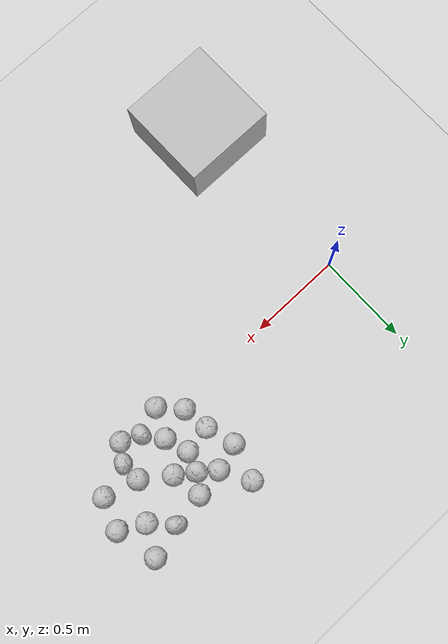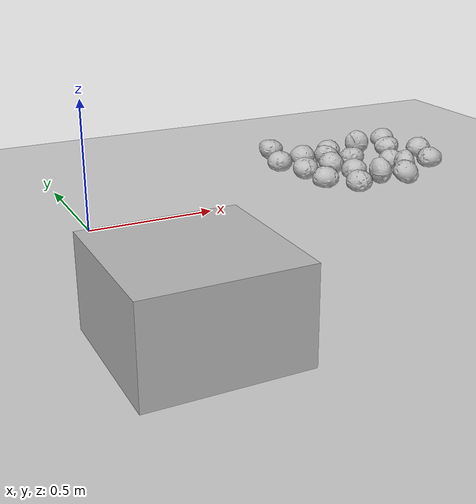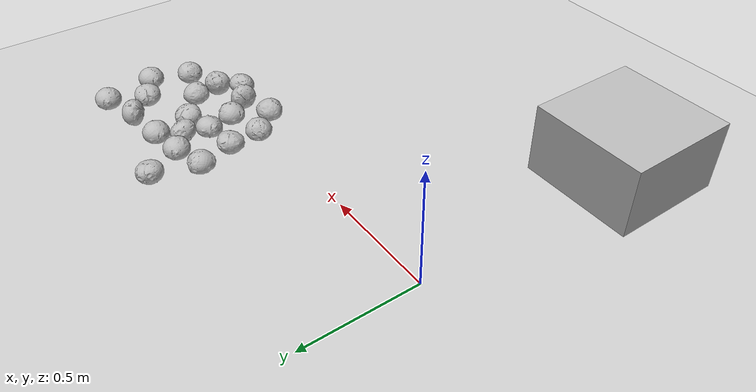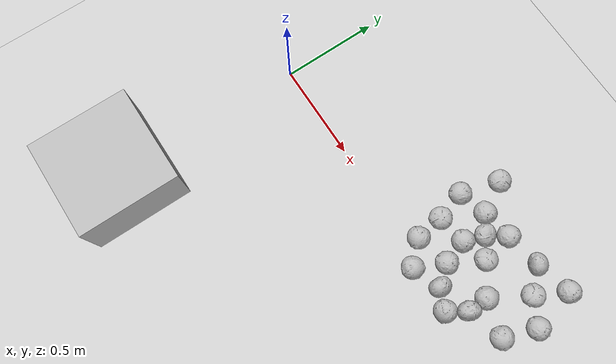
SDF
<sdf version="1.6">
 <world name="default">
  <model name="ground_plane">
   <static>1</static>
   <link name="link">
    <collision name="collision">
     <geometry><plane><normal>0 0 1</normal><size>100 100</size></plane></geometry>
     <surface>
      <contact><collide_bitmask>65535</collide_bitmask></contact>
      <friction><ode><mu>100</mu><mu2>50</mu2></ode></friction>
     </surface>
    </collision>
    <visual name="visual">
     <cast_shadows>0</cast_shadows>
     <geometry><plane><normal>0 0 1</normal><size>100 100</size></plane></geometry>
     <material>
      <script><uri>file://media/materials/scripts/gazebo.material</uri><name>Gazebo/Grey</name></script>
     </material>
    </visual>
   </link>
  </model>
  <light name="sun" type="directional">
   <pose>0 0 10 0 -0 0</pose>
   <diffuse>0.8 0.8 0.8 1</diffuse>
   <specular>0.2 0.2 0.2 1</specular>
   <attenuation>
    <range>1000</range>
    <constant>0.9</constant>
    <linear>0.01</linear>
    <quadratic>0.001</quadratic>
   </attenuation>
   <direction>-0.5 0.1 -0.9</direction>
  </light>
  <model name="mytable">
   <static>1</static>
   <link name="link">
    <inertial>
     <mass>100</mass>
     <inertia><ixx>0.083</ixx><ixy>0</ixy><ixz>0</ixz><iyy>0.083</iyy><iyz>0</iyz><izz>0.083</izz></inertia>
    </inertial>
    <collision name="collision"><geometry><box><size>0.5 0.5 0.4</size></box></geometry></collision>
    <visual name="visual"><geometry><box><size>0.5 0.5 0.4</size></box></geometry></visual>
   </link>
   <pose>0 -1 0.1 0 -0 0</pose>
  </model>
  <gravity>0 0 -9.8</gravity>
  <magnetic_field>6e-06 2.3e-05 -4.2e-05</magnetic_field>
  <atmosphere type="adiabatic"/>
  <physics name="default_physics" default="0" type="ode">
   <max_step_size>0.001</max_step_size>
   <real_time_factor>1</real_time_factor>
   <real_time_update_rate>1000</real_time_update_rate>
  </physics>
  <scene><ambient>0.4 0.4 0.4 1</ambient><background>0.7 0.7 0.7 1</background><shadows>1</shadows></scene>
  <audio><device>default</device></audio>
  <spherical_coordinates>
   <surface_model>EARTH_WGS84</surface_model>
   <latitude_deg>0</latitude_deg>
   <longitude_deg>0</longitude_deg>
   <elevation>0</elevation>
   <heading_deg>0</heading_deg>
  </spherical_coordinates>
  <model name="cabbage_1">
   <link name="link">
    <inertial>
     <mass>1</mass>
     <inertia><ixx>0.001</ixx><ixy>0</ixy><ixz>0</ixz><iyy>0.001</iyy><iyz>0</iyz><izz>0.001</izz></inertia>
    </inertial>
    <collision name="collision">
     <geometry>
      <mesh><scale>0.001 0.001 0.001</scale><uri>model://cabbage/cabbage_single.dae</uri></mesh>
     </geometry>
     <surface>
      <friction><ode><mu>0.8</mu><mu2>0.8</mu2></ode></friction>
      <contact><ode><max_vel>0.05</max_vel><min_depth>0.0001</min_depth></ode></contact>
     </surface>
    </collision>
    <visual name="visual">
     <geometry>
      <mesh><scale>0.001 0.001 0.001</scale><uri>model://cabbage/cabbage_single.dae</uri></mesh>
     </geometry>
     <material><script><uri>model://cabbage/texture.material</uri><name>CabbageTexture</name></script></material>
    </visual>
   </link>
   <pose>1.57456 0.326079 0.048839 -1.61251 -0.167894 0.044056</pose>
  </model>
  <model name="cabbage_2">
   <link name="link">
    <inertial>
     <mass>1</mass>
     <inertia><ixx>0.001</ixx><ixy>0</ixy><ixz>0</ixz><iyy>0.001</iyy><iyz>0</iyz><izz>0.001</izz></inertia>
    </inertial>
    <collision name="collision">
     <geometry>
      <mesh><scale>0.001 0.001 0.001</scale><uri>model://cabbage/cabbage_single.dae</uri></mesh>
     </geometry>
     <surface>
      <friction><ode><mu>0.8</mu><mu2>0.8</mu2></ode></friction>
      <contact><ode><max_vel>0.05</max_vel><min_depth>0.0001</min_depth></ode></contact>
     </surface>
    </collision>
    <visual name="visual">
     <geometry>
      <mesh><scale>0.001 0.001 0.001</scale><uri>model://cabbage/cabbage_single.dae</uri></mesh>
     </geometry>
     <material><script><uri>model://cabbage/texture.material</uri><name>CabbageTexture</name></script></material>
    </visual>
   </link>
   <pose>1.14043 0.381492 0.051428 1.57481 0.007128 -1.27559</pose>
  </model>
  <model name="cabbage_3">
   <link name="link">
    <inertial>
     <mass>1</mass>
     <inertia><ixx>0.001</ixx><ixy>0</ixy><ixz>0</ixz><iyy>0.001</iyy><iyz>0</iyz><izz>0.001</izz></inertia>
    </inertial>
    <collision name="collision">
     <geometry>
      <mesh><scale>0.001 0.001 0.001</scale><uri>model://cabbage/cabbage_single.dae</uri></mesh>
     </geometry>
     <surface>
      <friction><ode><mu>0.8</mu><mu2>0.8</mu2></ode></friction>
      <contact><ode><max_vel>0.05</max_vel><min_depth>0.0001</min_depth></ode></contact>
     </surface>
    </collision>
    <visual name="visual">
     <geometry>
      <mesh><scale>0.001 0.001 0.001</scale><uri>model://cabbage/cabbage_single.dae</uri></mesh>
     </geometry>
     <material><script><uri>model://cabbage/texture.material</uri><name>CabbageTexture</name></script></material>
    </visual>
   </link>
   <pose>1.30643 -0.011461 0.05901 0.126521 0.617138 -1.55404</pose>
  </model>
  <model name="cabbage_4">
   <link name="link">
    <inertial>
     <mass>1</mass>
     <inertia><ixx>0.001</ixx><ixy>0</ixy><ixz>0</ixz><iyy>0.001</iyy><iyz>0</iyz><izz>0.001</izz></inertia>
    </inertial>
    <collision name="collision">
     <geometry>
      <mesh><scale>0.001 0.001 0.001</scale><uri>model://cabbage/cabbage_single.dae</uri></mesh>
     </geometry>
     <surface>
      <friction><ode><mu>0.8</mu><mu2>0.8</mu2></ode></friction>
      <contact><ode><max_vel>0.05</max_vel><min_depth>0.0001</min_depth></ode></contact>
     </surface>
    </collision>
    <visual name="visual">
     <geometry>
      <mesh><scale>0.001 0.001 0.001</scale><uri>model://cabbage/cabbage_single.dae</uri></mesh>
     </geometry>
     <material><script><uri>model://cabbage/texture.material</uri><name>CabbageTexture</name></script></material>
    </visual>
   </link>
   <pose>1.16037 -0.065343 0.05151 1.57624 0.008898 -3.08152</pose>
  </model>
  <model name="cabbage_5">
   <link name="link">
    <inertial>
     <mass>1</mass>
     <inertia><ixx>0.001</ixx><ixy>0</ixy><ixz>0</ixz><iyy>0.001</iyy><iyz>0</iyz><izz>0.001</izz></inertia>
    </inertial>
    <collision name="collision">
     <geometry>
      <mesh><scale>0.001 0.001 0.001</scale><uri>model://cabbage/cabbage_single.dae</uri></mesh>
     </geometry>
     <surface>
      <friction><ode><mu>0.8</mu><mu2>0.8</mu2></ode></friction>
      <contact><ode><max_vel>0.05</max_vel><min_depth>0.0001</min_depth></ode></contact>
     </surface>
    </collision>
    <visual name="visual">
     <geometry>
      <mesh><scale>0.001 0.001 0.001</scale><uri>model://cabbage/cabbage_single.dae</uri></mesh>
     </geometry>
     <material><script><uri>model://cabbage/texture.material</uri><name>CabbageTexture</name></script></material>
    </visual>
   </link>
   <pose>1.70586 0.255801 0.051511 1.57607 0.008797 -0.718621</pose>
  </model>
  <model name="cabbage_6">
   <link name="link">
    <inertial>
     <mass>1</mass>
     <inertia><ixx>0.001</ixx><ixy>0</ixy><ixz>0</ixz><iyy>0.001</iyy><iyz>0</iyz><izz>0.001</izz></inertia>
    </inertial>
    <collision name="collision">
     <geometry>
      <mesh><scale>0.001 0.001 0.001</scale><uri>model://cabbage/cabbage_single.dae</uri></mesh>
     </geometry>
     <surface>
      <friction><ode><mu>0.8</mu><mu2>0.8</mu2></ode></friction>
      <contact><ode><max_vel>0.05</max_vel><min_depth>0.0001</min_depth></ode></contact>
     </surface>
    </collision>
    <visual name="visual">
     <geometry>
      <mesh><scale>0.001 0.001 0.001</scale><uri>model://cabbage/cabbage_single.dae</uri></mesh>
     </geometry>
     <material><script><uri>model://cabbage/texture.material</uri><name>CabbageTexture</name></script></material>
    </visual>
   </link>
   <pose>1.40569 -0.059711 0.056397 1.95411 -0.360514 1.27379</pose>
  </model>
  <model name="cabbage_7">
   <link name="link">
    <inertial>
     <mass>1</mass>
     <inertia><ixx>0.001</ixx><ixy>0</ixy><ixz>0</ixz><iyy>0.001</iyy><iyz>0</iyz><izz>0.001</izz></inertia>
    </inertial>
    <collision name="collision">
     <geometry>
      <mesh><scale>0.001 0.001 0.001</scale><uri>model://cabbage/cabbage_single.dae</uri></mesh>
     </geometry>
     <surface>
      <friction><ode><mu>0.8</mu><mu2>0.8</mu2></ode></friction>
      <contact><ode><max_vel>0.05</max_vel><min_depth>0.0001</min_depth></ode></contact>
     </surface>
    </collision>
    <visual name="visual">
     <geometry>
      <mesh><scale>0.001 0.001 0.001</scale><uri>model://cabbage/cabbage_single.dae</uri></mesh>
     </geometry>
     <material><script><uri>model://cabbage/texture.material</uri><name>CabbageTexture</name></script></material>
    </visual>
   </link>
   <pose>1.05926 0.043629 0.051509 1.57613 0.009034 1.37471</pose>
  </model>
  <model name="cabbage_8">
   <link name="link">
    <inertial>
     <mass>1</mass>
     <inertia><ixx>0.001</ixx><ixy>0</ixy><ixz>0</ixz><iyy>0.001</iyy><iyz>0</iyz><izz>0.001</izz></inertia>
    </inertial>
    <collision name="collision">
     <geometry>
      <mesh><scale>0.001 0.001 0.001</scale><uri>model://cabbage/cabbage_single.dae</uri></mesh>
     </geometry>
     <surface>
      <friction><ode><mu>0.8</mu><mu2>0.8</mu2></ode></friction>
      <contact><ode><max_vel>0.05</max_vel><min_depth>0.0001</min_depth></ode></contact>
     </surface>
    </collision>
    <visual name="visual">
     <geometry>
      <mesh><scale>0.001 0.001 0.001</scale><uri>model://cabbage/cabbage_single.dae</uri></mesh>
     </geometry>
     <material><script><uri>model://cabbage/texture.material</uri><name>CabbageTexture</name></script></material>
    </visual>
   </link>
   <pose>1.23105 0.085213 0.05151 1.57614 0.008968 -0.175282</pose>
  </model>
  <model name="cabbage_9">
   <link name="link">
    <inertial>
     <mass>1</mass>
     <inertia><ixx>0.001</ixx><ixy>0</ixy><ixz>0</ixz><iyy>0.001</iyy><iyz>0</iyz><izz>0.001</izz></inertia>
    </inertial>
    <collision name="collision">
     <geometry>
      <mesh><scale>0.001 0.001 0.001</scale><uri>model://cabbage/cabbage_single.dae</uri></mesh>
     </geometry>
     <surface>
      <friction><ode><mu>0.8</mu><mu2>0.8</mu2></ode></friction>
      <contact><ode><max_vel>0.05</max_vel><min_depth>0.0001</min_depth></ode></contact>
     </surface>
    </collision>
    <visual name="visual">
     <geometry>
      <mesh><scale>0.001 0.001 0.001</scale><uri>model://cabbage/cabbage_single.dae</uri></mesh>
     </geometry>
     <material><script><uri>model://cabbage/texture.material</uri><name>CabbageTexture</name></script></material>
    </visual>
   </link>
   <pose>1.29252 0.406235 0.051511 1.57615 0.008848 -0.692284</pose>
  </model>
  <model name="cabbage_10">
   <link name="link">
    <inertial>
     <mass>1</mass>
     <inertia><ixx>0.001</ixx><ixy>0</ixy><ixz>0</ixz><iyy>0.001</iyy><iyz>0</iyz><izz>0.001</izz></inertia>
    </inertial>
    <collision name="collision">
     <geometry>
      <mesh><scale>0.001 0.001 0.001</scale><uri>model://cabbage/cabbage_single.dae</uri></mesh>
     </geometry>
     <surface>
      <friction><ode><mu>0.8</mu><mu2>0.8</mu2></ode></friction>
      <contact><ode><max_vel>0.05</max_vel><min_depth>0.0001</min_depth></ode></contact>
     </surface>
    </collision>
    <visual name="visual">
     <geometry>
      <mesh><scale>0.001 0.001 0.001</scale><uri>model://cabbage/cabbage_single.dae</uri></mesh>
     </geometry>
     <material><script><uri>model://cabbage/texture.material</uri><name>CabbageTexture</name></script></material>
    </visual>
   </link>
   <pose>1.22421 0.312697 0.051442 -1.66779 -0.602282 -2.40746</pose>
  </model>
  <model name="cabbage_11">
   <link name="link">
    <inertial>
     <mass>1</mass>
     <inertia><ixx>0.001</ixx><ixy>0</ixy><ixz>0</ixz><iyy>0.001</iyy><iyz>0</iyz><izz>0.001</izz></inertia>
    </inertial>
    <collision name="collision">
     <geometry>
      <mesh><scale>0.001 0.001 0.001</scale><uri>model://cabbage/cabbage_single.dae</uri></mesh>
     </geometry>
     <surface>
      <friction><ode><mu>0.8</mu><mu2>0.8</mu2></ode></friction>
      <contact><ode><max_vel>0.05</max_vel><min_depth>0.0001</min_depth></ode></contact>
     </surface>
    </collision>
    <visual name="visual">
     <geometry>
      <mesh><scale>0.001 0.001 0.001</scale><uri>model://cabbage/cabbage_single.dae</uri></mesh>
     </geometry>
     <material><script><uri>model://cabbage/texture.material</uri><name>CabbageTexture</name></script></material>
    </visual>
   </link>
   <pose>1.46482 0.140341 0.052209 1.66374 -0.020289 -2.59653</pose>
  </model>
  <model name="cabbage_12">
   <link name="link">
    <inertial>
     <mass>1</mass>
     <inertia><ixx>0.001</ixx><ixy>0</ixy><ixz>0</ixz><iyy>0.001</iyy><iyz>0</iyz><izz>0.001</izz></inertia>
    </inertial>
    <collision name="collision">
     <geometry>
      <mesh><scale>0.001 0.001 0.001</scale><uri>model://cabbage/cabbage_single.dae</uri></mesh>
     </geometry>
     <surface>
      <friction><ode><mu>0.8</mu><mu2>0.8</mu2></ode></friction>
      <contact><ode><max_vel>0.05</max_vel><min_depth>0.0001</min_depth></ode></contact>
     </surface>
    </collision>
    <visual name="visual">
     <geometry>
      <mesh><scale>0.001 0.001 0.001</scale><uri>model://cabbage/cabbage_single.dae</uri></mesh>
     </geometry>
     <material><script><uri>model://cabbage/texture.material</uri><name>CabbageTexture</name></script></material>
    </visual>
   </link>
   <pose>1.65408 0.479479 0.051506 1.57643 0.008078 -1.23328</pose>
  </model>
  <model name="cabbage_13">
   <link name="link">
    <inertial>
     <mass>1</mass>
     <inertia><ixx>0.001</ixx><ixy>0</ixy><ixz>0</ixz><iyy>0.001</iyy><iyz>0</iyz><izz>0.001</izz></inertia>
    </inertial>
    <collision name="collision">
     <geometry>
      <mesh><scale>0.001 0.001 0.001</scale><uri>model://cabbage/cabbage_single.dae</uri></mesh>
     </geometry>
     <surface>
      <friction><ode><mu>0.8</mu><mu2>0.8</mu2></ode></friction>
      <contact><ode><max_vel>0.05</max_vel><min_depth>0.0001</min_depth></ode></contact>
     </surface>
    </collision>
    <visual name="visual">
     <geometry>
      <mesh><scale>0.001 0.001 0.001</scale><uri>model://cabbage/cabbage_single.dae</uri></mesh>
     </geometry>
     <material><script><uri>model://cabbage/texture.material</uri><name>CabbageTexture</name></script></material>
    </visual>
   </link>
   <pose>1.05231 0.534387 0.048854 -1.6616 -0.104755 -2.29802</pose>
  </model>
  <model name="cabbage_14">
   <link name="link">
    <inertial>
     <mass>1</mass>
     <inertia><ixx>0.001</ixx><ixy>0</ixy><ixz>0</ixz><iyy>0.001</iyy><iyz>0</iyz><izz>0.001</izz></inertia>
    </inertial>
    <collision name="collision">
     <geometry>
      <mesh><scale>0.001 0.001 0.001</scale><uri>model://cabbage/cabbage_single.dae</uri></mesh>
     </geometry>
     <surface>
      <friction><ode><mu>0.8</mu><mu2>0.8</mu2></ode></friction>
      <contact><ode><max_vel>0.05</max_vel><min_depth>0.0001</min_depth></ode></contact>
     </surface>
    </collision>
    <visual name="visual">
     <geometry>
      <mesh><scale>0.001 0.001 0.001</scale><uri>model://cabbage/cabbage_single.dae</uri></mesh>
     </geometry>
     <material><script><uri>model://cabbage/texture.material</uri><name>CabbageTexture</name></script></material>
    </visual>
   </link>
   <pose>1.64453 0.088991 0.051511 1.57621 0.008755 1.93929</pose>
  </model>
  <model name="cabbage_15">
   <link name="link">
    <inertial>
     <mass>1</mass>
     <inertia><ixx>0.001</ixx><ixy>0</ixy><ixz>0</ixz><iyy>0.001</iyy><iyz>0</iyz><izz>0.001</izz></inertia>
    </inertial>
    <collision name="collision">
     <geometry>
      <mesh><scale>0.001 0.001 0.001</scale><uri>model://cabbage/cabbage_single.dae</uri></mesh>
     </geometry>
     <surface>
      <friction><ode><mu>0.8</mu><mu2>0.8</mu2></ode></friction>
      <contact><ode><max_vel>0.05</max_vel><min_depth>0.0001</min_depth></ode></contact>
     </surface>
    </collision>
    <visual name="visual">
     <geometry>
      <mesh><scale>0.001 0.001 0.001</scale><uri>model://cabbage/cabbage_single.dae</uri></mesh>
     </geometry>
     <material><script><uri>model://cabbage/texture.material</uri><name>CabbageTexture</name></script></material>
    </visual>
   </link>
   <pose>0.997124 0.340506 0.051511 1.57607 0.008777 0.292884</pose>
  </model>
  <model name="cabbage_16">
   <link name="link">
    <inertial>
     <mass>1</mass>
     <inertia><ixx>0.001</ixx><ixy>0</ixy><ixz>0</ixz><iyy>0.001</iyy><iyz>0</iyz><izz>0.001</izz></inertia>
    </inertial>
    <collision name="collision">
     <geometry>
      <mesh><scale>0.001 0.001 0.001</scale><uri>model://cabbage/cabbage_single.dae</uri></mesh>
     </geometry>
     <surface>
      <friction><ode><mu>0.8</mu><mu2>0.8</mu2></ode></friction>
      <contact><ode><max_vel>0.05</max_vel><min_depth>0.0001</min_depth></ode></contact>
     </surface>
    </collision>
    <visual name="visual">
     <geometry>
      <mesh><scale>0.001 0.001 0.001</scale><uri>model://cabbage/cabbage_single.dae</uri></mesh>
     </geometry>
     <material><script><uri>model://cabbage/texture.material</uri><name>CabbageTexture</name></script></material>
    </visual>
   </link>
   <pose>1.46311 0.035522 0.061376 -2.99463 -0.31977 -2.09537</pose>
  </model>
  <model name="cabbage_17">
   <link name="link">
    <inertial>
     <mass>1</mass>
     <inertia><ixx>0.001</ixx><ixy>0</ixy><ixz>0</ixz><iyy>0.001</iyy><iyz>0</iyz><izz>0.001</izz></inertia>
    </inertial>
    <collision name="collision">
     <geometry>
      <mesh><scale>0.001 0.001 0.001</scale><uri>model://cabbage/cabbage_single.dae</uri></mesh>
     </geometry>
     <surface>
      <friction><ode><mu>0.8</mu><mu2>0.8</mu2></ode></friction>
      <contact><ode><max_vel>0.05</max_vel><min_depth>0.0001</min_depth></ode></contact>
     </surface>
    </collision>
    <visual name="visual">
     <geometry>
      <mesh><scale>0.001 0.001 0.001</scale><uri>model://cabbage/cabbage_single.dae</uri></mesh>
     </geometry>
     <material><script><uri>model://cabbage/texture.material</uri><name>CabbageTexture</name></script></material>
    </visual>
   </link>
   <pose>1.32064 0.243848 0.048849 -1.66248 -0.171487 -0.706665</pose>
  </model>
  <model name="cabbage_18">
   <link name="link">
    <inertial>
     <mass>1</mass>
     <inertia><ixx>0.001</ixx><ixy>0</ixy><ixz>0</ixz><iyy>0.001</iyy><iyz>0</iyz><izz>0.001</izz></inertia>
    </inertial>
    <collision name="collision">
     <geometry>
      <mesh><scale>0.001 0.001 0.001</scale><uri>model://cabbage/cabbage_single.dae</uri></mesh>
     </geometry>
     <surface>
      <friction><ode><mu>0.8</mu><mu2>0.8</mu2></ode></friction>
      <contact><ode><max_vel>0.05</max_vel><min_depth>0.0001</min_depth></ode></contact>
     </surface>
    </collision>
    <visual name="visual">
     <geometry>
      <mesh><scale>0.001 0.001 0.001</scale><uri>model://cabbage/cabbage_single.dae</uri></mesh>
     </geometry>
     <material><script><uri>model://cabbage/texture.material</uri><name>CabbageTexture</name></script></material>
    </visual>
   </link>
   <pose>1.04361 0.186446 0.048844 -1.61241 -0.167905 1.83898</pose>
  </model>
  <model name="cabbage_19">
   <link name="link">
    <inertial>
     <mass>1</mass>
     <inertia><ixx>0.001</ixx><ixy>0</ixy><ixz>0</ixz><iyy>0.001</iyy><iyz>0</iyz><izz>0.001</izz></inertia>
    </inertial>
    <collision name="collision">
     <geometry>
      <mesh><scale>0.001 0.001 0.001</scale><uri>model://cabbage/cabbage_single.dae</uri></mesh>
     </geometry>
     <surface>
      <friction><ode><mu>0.8</mu><mu2>0.8</mu2></ode></friction>
      <contact><ode><max_vel>0.05</max_vel><min_depth>0.0001</min_depth></ode></contact>
     </surface>
    </collision>
    <visual name="visual">
     <geometry>
      <mesh><scale>0.001 0.001 0.001</scale><uri>model://cabbage/cabbage_single.dae</uri></mesh>
     </geometry>
     <material><script><uri>model://cabbage/texture.material</uri><name>CabbageTexture</name></script></material>
    </visual>
   </link>
   <pose>1.47264 0.435679 0.05901 0.12653 0.616916 -0.498298</pose>
  </model>
  <model name="cabbage_20">
   <link name="link">
    <inertial>
     <mass>1</mass>
     <inertia><ixx>0.001</ixx><ixy>0</ixy><ixz>0</ixz><iyy>0.001</iyy><iyz>0</iyz><izz>0.001</izz></inertia>
    </inertial>
    <collision name="collision">
     <geometry>
      <mesh><scale>0.001 0.001 0.001</scale><uri>model://cabbage/cabbage_single.dae</uri></mesh>
     </geometry>
     <surface>
      <friction><ode><mu>0.8</mu><mu2>0.8</mu2></ode></friction>
      <contact><ode><max_vel>0.05</max_vel><min_depth>0.0001</min_depth></ode></contact>
     </surface>
    </collision>
    <visual name="visual">
     <geometry>
      <mesh><scale>0.001 0.001 0.001</scale><uri>model://cabbage/cabbage_single.dae</uri></mesh>
     </geometry>
     <material><script><uri>model://cabbage/texture.material</uri><name>CabbageTexture</name></script></material>
    </visual>
   </link>
   <pose>1.19191 0.208876 0.054454 1.5487 0.36285 -0.817096</pose>
  </model>
 </world>
</sdf>
